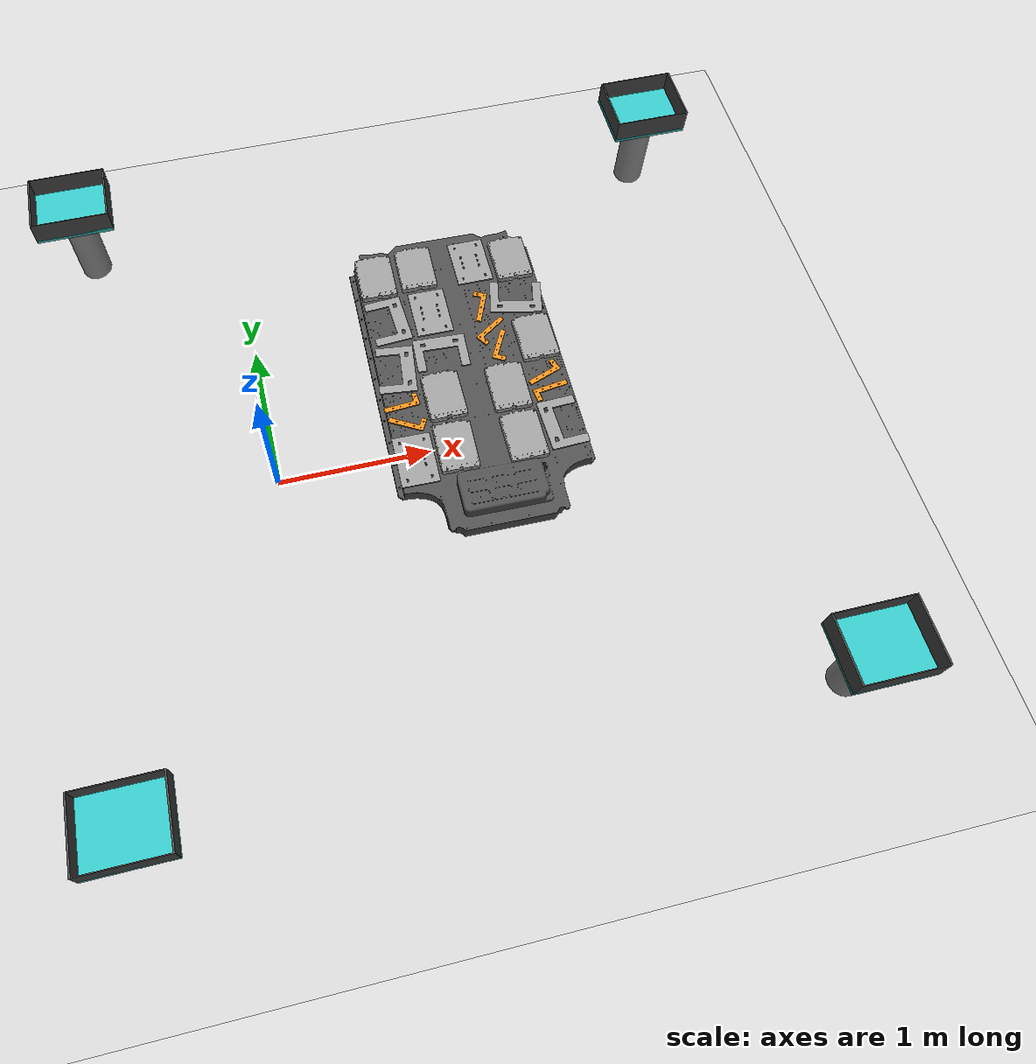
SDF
<sdf version="1.6">
 <world name="default">
  <scene><shadows>0</shadows><ambient>0.4 0.4 0.4 1</ambient><background>0.7 0.7 0.7 1</background></scene>
  <model name="ground_plane">
   <static>1</static>
   <link name="link">
    <collision name="collision">
     <geometry><plane><normal>0 0 1</normal><size>100 100</size></plane></geometry>
     <surface><friction><ode><mu>100</mu><mu2>50</mu2></ode></friction></surface>
    </collision>
    <visual name="visual">
     <cast_shadows>0</cast_shadows>
     <geometry><plane><normal>0 0 1</normal><size>100 100</size></plane></geometry>
     <material>
      <script><uri>file://media/materials/scripts/gazebo.material</uri><name>PR2/Grey3</name></script>
     </material>
    </visual>
   </link>
  </model>
  <light name="sun" type="directional">
   <pose>0 0 10 0 -0 0</pose>
   <diffuse>0.8 0.8 0.8 1</diffuse>
   <specular>0.2 0.2 0.2 1</specular>
   <attenuation>
    <range>1000</range>
    <constant>0.9</constant>
    <linear>0.01</linear>
    <quadratic>0.001</quadratic>
   </attenuation>
   <direction>-0.5 0.1 -0.9</direction>
  </light>
  <model name="tesla_battery">
   <static>1</static>
   <link name="link0">
    <collision name="collision">
     <pose>0.05 0.15 -0.05445 0 -0 0</pose>
     <geometry><box><size>1.1 1.9 0.12</size></box></geometry>
     <surface><friction><ode><mu>1</mu><mu2>1</mu2></ode></friction></surface>
    </collision>
    <visual name="visual">
     <geometry><mesh><uri>model://tesla_battery_v2/meshes/tesla_batteryv2.dae</uri></mesh></geometry>
     <material>
      <script><uri>file://media/materials/scripts/gazebo.material</uri><name>Gazebo/DarkGrey</name></script>
     </material>
    </visual>
   </link>
   <pose>1.26097 -0.02038 0.8 0 -0 0</pose>
  </model>
  <model name="tesla_battery_support">
   <static>1</static>
   <link name="link0">
    <collision name="collision"><geometry><box><size>0.7 2.8 0.5</size></box></geometry></collision>
   </link>
   <pose>1.3 0 0.25 0 -0 0</pose>
  </model>
  <model name="bin_1">
   <static>1</static>
   <link name="column_link">
    <collision name="column">
     <pose>0 0 0.3 0 -0 0</pose>
     <geometry><box><size>0.4 0.5 0.6</size></box></geometry>
     <surface><friction><ode><mu>0.6</mu><mu2>0.6</mu2></ode></friction></surface>
    </collision>
    <visual name="column">
     <pose>0 0 0.3 0 -0 0</pose>
     <geometry><cylinder><radius>0.1</radius><length>0.6</length></cylinder></geometry>
     <material>
      <script><uri>file://media/materials/scripts/gazebo.material</uri><name>PR2/Grey4</name></script>
     </material>
    </visual>
   </link>
   <joint name="column2table" type="revolute">
    <parent>column_link</parent>
    <child>table_link</child>
    <pose>0 0 0.3 0 -0 0</pose>
   </joint>
   <link name="table_link">
    <collision name="surface">
     <pose>0 0 0.6 0 -0 0</pose>
     <geometry><box><size>0.5 0.4 0.03</size></box></geometry>
     <surface><friction><ode><mu>0.6</mu><mu2>0.6</mu2></ode></friction></surface>
    </collision>
    <visual name="surface">
     <pose>0 0 0.6 0 -0 0</pose>
     <geometry><box><size>0.5 0.4 0.03</size></box></geometry>
     <material>
      <script><uri>file://media/materials/scripts/gazebo.material</uri><name>Gazebo/Turquoise</name></script>
     </material>
    </visual>
   </link>
   <joint name="table2bin" type="prismatic">
    <parent>table_link</parent>
    <child>bin_link</child>
    <pose>0 0 1 0 -0 0</pose>
    <axis>
     <xyz>0 0 1</xyz>
     <use_parent_model_frame>0</use_parent_model_frame>
     <limit><lower>-1e+16</lower><upper>1e+16</upper></limit>
     <dynamics><spring_reference>0</spring_reference><spring_stiffness>0</spring_stiffness></dynamics>
    </axis>
   </joint>
   <link name="bin_link">
    <collision name="bin">
     <pose>0 0 0.68 0 -0 0</pose>
     <geometry><mesh><uri>model://table_bin/meshes/big_bin.stl</uri></mesh></geometry>
    </collision>
    <visual name="bin">
     <pose>0 0 0.68 0 -0 0</pose>
     <geometry><mesh><uri>model://table_bin/meshes/big_bin.dae</uri></mesh></geometry>
     <material>
      <script><uri>file://media/materials/scripts/gazebo.material</uri><name>Gazebo/DarkGrey</name></script>
     </material>
    </visual>
   </link>
   <pose>-1 2 0 0 -0 0</pose>
  </model>
  <model name="bin_2">
   <static>1</static>
   <link name="column_link">
    <collision name="column">
     <pose>0 0 0.3 0 -0 0</pose>
     <geometry><box><size>0.4 0.5 0.6</size></box></geometry>
     <surface><friction><ode><mu>0.6</mu><mu2>0.6</mu2></ode></friction></surface>
    </collision>
    <visual name="column">
     <pose>0 0 0.3 0 -0 0</pose>
     <geometry><cylinder><radius>0.1</radius><length>0.6</length></cylinder></geometry>
     <material>
      <script><uri>file://media/materials/scripts/gazebo.material</uri><name>PR2/Grey4</name></script>
     </material>
    </visual>
   </link>
   <joint name="column2table" type="revolute">
    <parent>column_link</parent>
    <child>table_link</child>
    <pose>0 0 0.3 0 -0 0</pose>
   </joint>
   <link name="table_link">
    <collision name="surface">
     <pose>0 0 0.6 0 -0 0</pose>
     <geometry><box><size>0.5 0.4 0.03</size></box></geometry>
     <surface><friction><ode><mu>0.6</mu><mu2>0.6</mu2></ode></friction></surface>
    </collision>
    <visual name="surface">
     <pose>0 0 0.6 0 -0 0</pose>
     <geometry><box><size>0.5 0.4 0.03</size></box></geometry>
     <material>
      <script><uri>file://media/materials/scripts/gazebo.material</uri><name>Gazebo/Turquoise</name></script>
     </material>
    </visual>
   </link>
   <joint name="table2bin" type="prismatic">
    <parent>table_link</parent>
    <child>bin_link</child>
    <pose>0 0 1 0 -0 0</pose>
    <axis>
     <xyz>0 0 1</xyz>
     <use_parent_model_frame>0</use_parent_model_frame>
     <limit><lower>-1e+16</lower><upper>1e+16</upper></limit>
     <dynamics><spring_reference>0</spring_reference><spring_stiffness>0</spring_stiffness></dynamics>
    </axis>
   </joint>
   <link name="bin_link">
    <collision name="bin">
     <pose>0 0 0.68 0 -0 0</pose>
     <geometry><mesh><uri>model://table_bin/meshes/big_bin.stl</uri></mesh></geometry>
    </collision>
    <visual name="bin">
     <pose>0 0 0.68 0 -0 0</pose>
     <geometry><mesh><uri>model://table_bin/meshes/big_bin.dae</uri></mesh></geometry>
     <material>
      <script><uri>file://media/materials/scripts/gazebo.material</uri><name>Gazebo/DarkGrey</name></script>
     </material>
    </visual>
   </link>
   <pose>-1 -2 0 0 -0 0</pose>
  </model>
  <model name="bin_3">
   <static>1</static>
   <link name="column_link">
    <collision name="column">
     <pose>0 0 0.3 0 -0 0</pose>
     <geometry><box><size>0.4 0.5 0.6</size></box></geometry>
     <surface><friction><ode><mu>0.6</mu><mu2>0.6</mu2></ode></friction></surface>
    </collision>
    <visual name="column">
     <pose>0 0 0.3 0 -0 0</pose>
     <geometry><cylinder><radius>0.1</radius><length>0.6</length></cylinder></geometry>
     <material>
      <script><uri>file://media/materials/scripts/gazebo.material</uri><name>PR2/Grey4</name></script>
     </material>
    </visual>
   </link>
   <joint name="column2table" type="revolute">
    <parent>column_link</parent>
    <child>table_link</child>
    <pose>0 0 0.3 0 -0 0</pose>
   </joint>
   <link name="table_link">
    <collision name="surface">
     <pose>0 0 0.6 0 -0 0</pose>
     <geometry><box><size>0.5 0.4 0.03</size></box></geometry>
     <surface><friction><ode><mu>0.6</mu><mu2>0.6</mu2></ode></friction></surface>
    </collision>
    <visual name="surface">
     <pose>0 0 0.6 0 -0 0</pose>
     <geometry><box><size>0.5 0.4 0.03</size></box></geometry>
     <material>
      <script><uri>file://media/materials/scripts/gazebo.material</uri><name>Gazebo/Turquoise</name></script>
     </material>
    </visual>
   </link>
   <joint name="table2bin" type="prismatic">
    <parent>table_link</parent>
    <child>bin_link</child>
    <pose>0 0 1 0 -0 0</pose>
    <axis>
     <xyz>0 0 1</xyz>
     <use_parent_model_frame>0</use_parent_model_frame>
     <limit><lower>-1e+16</lower><upper>1e+16</upper></limit>
     <dynamics><spring_reference>0</spring_reference><spring_stiffness>0</spring_stiffness></dynamics>
    </axis>
   </joint>
   <link name="bin_link">
    <collision name="bin">
     <pose>0 0 0.68 0 -0 0</pose>
     <geometry><mesh><uri>model://table_bin/meshes/big_bin.stl</uri></mesh></geometry>
    </collision>
    <visual name="bin">
     <pose>0 0 0.68 0 -0 0</pose>
     <geometry><mesh><uri>model://table_bin/meshes/big_bin.dae</uri></mesh></geometry>
     <material>
      <script><uri>file://media/materials/scripts/gazebo.material</uri><name>Gazebo/DarkGrey</name></script>
     </material>
    </visual>
   </link>
   <pose>3 -2 0 0 -0 0</pose>
  </model>
  <model name="bin_4">
   <static>1</static>
   <link name="column_link">
    <collision name="column">
     <pose>0 0 0.3 0 -0 0</pose>
     <geometry><box><size>0.4 0.5 0.6</size></box></geometry>
     <surface><friction><ode><mu>0.6</mu><mu2>0.6</mu2></ode></friction></surface>
    </collision>
    <visual name="column">
     <pose>0 0 0.3 0 -0 0</pose>
     <geometry><cylinder><radius>0.1</radius><length>0.6</length></cylinder></geometry>
     <material>
      <script><uri>file://media/materials/scripts/gazebo.material</uri><name>PR2/Grey4</name></script>
     </material>
    </visual>
   </link>
   <joint name="column2table" type="revolute">
    <parent>column_link</parent>
    <child>table_link</child>
    <pose>0 0 0.3 0 -0 0</pose>
   </joint>
   <link name="table_link">
    <collision name="surface">
     <pose>0 0 0.6 0 -0 0</pose>
     <geometry><box><size>0.5 0.4 0.03</size></box></geometry>
     <surface><friction><ode><mu>0.6</mu><mu2>0.6</mu2></ode></friction></surface>
    </collision>
    <visual name="surface">
     <pose>0 0 0.6 0 -0 0</pose>
     <geometry><box><size>0.5 0.4 0.03</size></box></geometry>
     <material>
      <script><uri>file://media/materials/scripts/gazebo.material</uri><name>Gazebo/Turquoise</name></script>
     </material>
    </visual>
   </link>
   <joint name="table2bin" type="prismatic">
    <parent>table_link</parent>
    <child>bin_link</child>
    <pose>0 0 1 0 -0 0</pose>
    <axis>
     <xyz>0 0 1</xyz>
     <use_parent_model_frame>0</use_parent_model_frame>
     <limit><lower>-1e+16</lower><upper>1e+16</upper></limit>
     <dynamics><spring_reference>0</spring_reference><spring_stiffness>0</spring_stiffness></dynamics>
    </axis>
   </joint>
   <link name="bin_link">
    <collision name="bin">
     <pose>0 0 0.68 0 -0 0</pose>
     <geometry><mesh><uri>model://table_bin/meshes/big_bin.stl</uri></mesh></geometry>
    </collision>
    <visual name="bin">
     <pose>0 0 0.68 0 -0 0</pose>
     <geometry><mesh><uri>model://table_bin/meshes/big_bin.dae</uri></mesh></geometry>
     <material>
      <script><uri>file://media/materials/scripts/gazebo.material</uri><name>Gazebo/DarkGrey</name></script>
     </material>
    </visual>
   </link>
   <pose>3 2 0 0 -0 0</pose>
  </model>
  <model name="leaf6">
   <static>0</static>
   <link name="leaf_cell_link">
    <collision name="collision">
     <geometry><box><size>0.2228 0.3149 0.035</size></box></geometry>
     <surface><friction><ode><mu>1</mu><mu2>1</mu2></ode></friction></surface>
    </collision>
    <visual name="visual">
     <geometry><mesh><uri>model://leaf_cell/meshes/leaf_cell.dae</uri></mesh></geometry>
     <material>
      <script><uri>file://media/materials/scripts/gazebo.material</uri><name>Gazebo/Grey</name></script>
     </material>
    </visual>
    <inertial>
     <pose>0 0 0 0 0 -1.5707</pose>
     <mass>0.1</mass>
     <inertia>
      <ixx>0.000539835</ixx>
      <iyy>0.00075853</iyy>
      <izz>0.0012813</izz>
      <ixy>0</ixy>
      <ixz>0</ixz>
      <iyz>0</iyz>
     </inertia>
    </inertial>
   </link>
   <pose>1.05959 -0.075193 0.82305 0 0 -0.00291</pose>
  </model>
  <model name="leaf66">
   <static>0</static>
   <link name="leaf_cell_link">
    <collision name="collision">
     <geometry><box><size>0.2228 0.3149 0.035</size></box></geometry>
     <surface><friction><ode><mu>1</mu><mu2>1</mu2></ode></friction></surface>
    </collision>
    <visual name="visual">
     <geometry><mesh><uri>model://leaf_cell/meshes/leaf_cell.dae</uri></mesh></geometry>
     <material>
      <script><uri>file://media/materials/scripts/gazebo.material</uri><name>Gazebo/Grey</name></script>
     </material>
    </visual>
    <inertial>
     <pose>0 0 0 0 0 -1.5707</pose>
     <mass>0.1</mass>
     <inertia>
      <ixx>0.000539835</ixx>
      <iyy>0.00075853</iyy>
      <izz>0.0012813</izz>
      <ixy>0</ixy>
      <ixz>0</ixz>
      <iyz>0</iyz>
     </inertia>
    </inertial>
   </link>
   <pose>1.09812 0.855126 0.823044 0 -5.4e-05 -0.028102</pose>
  </model>
  <model name="leaf5">
   <static>0</static>
   <link name="leaf_cell_link">
    <collision name="collision">
     <geometry><box><size>0.2228 0.3149 0.035</size></box></geometry>
     <surface><friction><ode><mu>1</mu><mu2>1</mu2></ode></friction></surface>
    </collision>
    <visual name="visual">
     <geometry><mesh><uri>model://leaf_cell/meshes/leaf_cell.dae</uri></mesh></geometry>
     <material>
      <script><uri>file://media/materials/scripts/gazebo.material</uri><name>Gazebo/Grey</name></script>
     </material>
    </visual>
    <inertial>
     <pose>0 0 0 0 0 -1.5707</pose>
     <mass>0.1</mass>
     <inertia>
      <ixx>0.000539835</ixx>
      <iyy>0.00075853</iyy>
      <izz>0.0012813</izz>
      <ixy>0</ixy>
      <ixz>0</ixz>
      <iyz>0</iyz>
     </inertia>
    </inertial>
   </link>
   <pose>1.68929 0.200985 0.82305 0 0 -0.001846</pose>
  </model>
  <model name="leaf55">
   <static>0</static>
   <link name="leaf_cell_link">
    <collision name="collision">
     <geometry><box><size>0.2228 0.3149 0.035</size></box></geometry>
     <surface><friction><ode><mu>1</mu><mu2>1</mu2></ode></friction></surface>
    </collision>
    <visual name="visual">
     <geometry><mesh><uri>model://leaf_cell/meshes/leaf_cell.dae</uri></mesh></geometry>
     <material>
      <script><uri>file://media/materials/scripts/gazebo.material</uri><name>Gazebo/Grey</name></script>
     </material>
    </visual>
    <inertial>
     <pose>0 0 0 0 0 -1.5707</pose>
     <mass>0.1</mass>
     <inertia>
      <ixx>0.000539835</ixx>
      <iyy>0.00075853</iyy>
      <izz>0.0012813</izz>
      <ixy>0</ixy>
      <ixz>0</ixz>
      <iyz>0</iyz>
     </inertia>
    </inertial>
   </link>
   <pose>1.43959 -0.099034 0.82305 0 0 -0.022437</pose>
  </model>
  <model name="leaf4">
   <static>0</static>
   <link name="leaf_cell_link">
    <collision name="collision">
     <geometry><box><size>0.2228 0.3149 0.035</size></box></geometry>
     <surface><friction><ode><mu>1</mu><mu2>1</mu2></ode></friction></surface>
    </collision>
    <visual name="visual">
     <geometry><mesh><uri>model://leaf_cell/meshes/leaf_cell.dae</uri></mesh></geometry>
     <material>
      <script><uri>file://media/materials/scripts/gazebo.material</uri><name>Gazebo/Grey</name></script>
     </material>
    </visual>
    <inertial>
     <pose>0 0 0 0 0 -1.5707</pose>
     <mass>0.1</mass>
     <inertia>
      <ixx>0.000539835</ixx>
      <iyy>0.00075853</iyy>
      <izz>0.0012813</izz>
      <ixy>0</ixy>
      <ixz>0</ixz>
      <iyz>0</iyz>
     </inertia>
    </inertial>
   </link>
   <pose>1.69367 0.803934 0.82305 0 0 -0.009591</pose>
  </model>
  <model name="leaf44">
   <static>0</static>
   <link name="leaf_cell_link">
    <collision name="collision">
     <geometry><box><size>0.2228 0.3149 0.035</size></box></geometry>
     <surface><friction><ode><mu>1</mu><mu2>1</mu2></ode></friction></surface>
    </collision>
    <visual name="visual">
     <geometry><mesh><uri>model://leaf_cell/meshes/leaf_cell.dae</uri></mesh></geometry>
     <material>
      <script><uri>file://media/materials/scripts/gazebo.material</uri><name>Gazebo/Grey</name></script>
     </material>
    </visual>
    <inertial>
     <pose>0 0 0 0 0 -1.5707</pose>
     <mass>0.1</mass>
     <inertia>
      <ixx>0.000539835</ixx>
      <iyy>0.00075853</iyy>
      <izz>0.0012813</izz>
      <ixy>0</ixy>
      <ixz>0</ixz>
      <iyz>0</iyz>
     </inertia>
    </inertial>
   </link>
   <pose>1.44275 -0.43523 0.823045 -3.2e-05 -0 0.003706</pose>
  </model>
  <model name="leaf1">
   <static>0</static>
   <link name="leaf_cell_link">
    <collision name="collision">
     <geometry><box><size>0.2228 0.3149 0.035</size></box></geometry>
     <surface><friction><ode><mu>1</mu><mu2>1</mu2></ode></friction></surface>
    </collision>
    <visual name="visual">
     <geometry><mesh><uri>model://leaf_cell/meshes/leaf_cell.dae</uri></mesh></geometry>
     <material>
      <script><uri>file://media/materials/scripts/gazebo.material</uri><name>Gazebo/Grey</name></script>
     </material>
    </visual>
    <inertial>
     <pose>0 0 0 0 0 -1.5707</pose>
     <mass>0.1</mass>
     <inertia>
      <ixx>0.000539835</ixx>
      <iyy>0.00075853</iyy>
      <izz>0.0012813</izz>
      <ixy>0</ixy>
      <ixz>0</ixz>
      <iyz>0</iyz>
     </inertia>
    </inertial>
   </link>
   <pose>0.843939 0.842418 0.823046 -1e-06 4.4e-05 -0.025657</pose>
  </model>
  <model name="plate_a_1">
   <static>0</static>
   <link name="link0">
    <collision name="collision">
     <geometry><mesh><uri>model://plate_a/meshes/plate_a_centroid.stl</uri></mesh></geometry>
     <surface><friction><ode><mu>0.99</mu><mu2>0.99</mu2></ode></friction></surface>
    </collision>
    <visual name="visual">
     <geometry><mesh><uri>model://plate_a/meshes/plate_a_centroid.dae</uri></mesh></geometry>
     <material>
      <script><uri>file://media/materials/scripts/gazebo.material</uri><name>PR2/Grey1</name></script>
     </material>
    </visual>
    <inertial>
     <mass>0.1</mass>
     <inertia>
      <ixx>0.00082718</ixx>
      <ixy>0</ixy>
      <ixz>0</ixz>
      <iyy>0.00043403</iyy>
      <iyz>0</iyz>
      <izz>0.00125955</izz>
     </inertia>
    </inertial>
   </link>
   <pose>0.906177 0.514501 0.81055 0 -0 0.063779</pose>
  </model>
  <model name="leaf2">
   <static>0</static>
   <link name="leaf_cell_link">
    <collision name="collision">
     <geometry><box><size>0.2228 0.3149 0.035</size></box></geometry>
     <surface><friction><ode><mu>1</mu><mu2>1</mu2></ode></friction></surface>
    </collision>
    <visual name="visual">
     <geometry><mesh><uri>model://leaf_cell/meshes/leaf_cell.dae</uri></mesh></geometry>
     <material>
      <script><uri>file://media/materials/scripts/gazebo.material</uri><name>Gazebo/Grey</name></script>
     </material>
    </visual>
    <inertial>
     <pose>0 0 0 0 0 -1.5707</pose>
     <mass>0.1</mass>
     <inertia>
      <ixx>0.000539835</ixx>
      <iyy>0.00075853</iyy>
      <izz>0.0012813</izz>
      <ixy>0</ixy>
      <ixz>0</ixz>
      <iyz>0</iyz>
     </inertia>
    </inertial>
   </link>
   <pose>1.04888 -0.416288 0.823044 0 5.4e-05 -0.033728</pose>
  </model>
  <model name="plate_a_2">
   <static>0</static>
   <link name="link0">
    <collision name="collision">
     <geometry><mesh><uri>model://plate_a/meshes/plate_a_centroid.stl</uri></mesh></geometry>
     <surface><friction><ode><mu>0.99</mu><mu2>0.99</mu2></ode></friction></surface>
    </collision>
    <visual name="visual">
     <geometry><mesh><uri>model://plate_a/meshes/plate_a_centroid.dae</uri></mesh></geometry>
     <material>
      <script><uri>file://media/materials/scripts/gazebo.material</uri><name>PR2/Grey1</name></script>
     </material>
    </visual>
    <inertial>
     <mass>0.1</mass>
     <inertia>
      <ixx>0.00082718</ixx>
      <ixy>0</ixy>
      <ixz>0</ixz>
      <iyy>0.00043403</iyy>
      <iyz>0</iyz>
      <izz>0.00125955</izz>
     </inertia>
    </inertial>
   </link>
   <pose>1.64255 0.460036 0.810545 5.3e-05 -6e-06 -1.78379</pose>
  </model>
  <gravity>0 0 -9.8</gravity>
  <magnetic_field>6e-06 2.3e-05 -4.2e-05</magnetic_field>
  <atmosphere type="adiabatic"/>
  <physics name="default_physics" default="0" type="ode">
   <max_step_size>0.001</max_step_size>
   <real_time_factor>1</real_time_factor>
   <real_time_update_rate>1000</real_time_update_rate>
  </physics>
  <spherical_coordinates>
   <surface_model>EARTH_WGS84</surface_model>
   <latitude_deg>0</latitude_deg>
   <longitude_deg>0</longitude_deg>
   <elevation>0</elevation>
   <heading_deg>0</heading_deg>
  </spherical_coordinates>
  <model name="plate_a_1_clone">
   <static>0</static>
   <link name="link0">
    <collision name="collision">
     <geometry><mesh><uri>model://plate_a/meshes/plate_a_centroid.stl</uri></mesh></geometry>
     <surface><friction><ode><mu>0.99</mu><mu2>0.99</mu2></ode></friction></surface>
    </collision>
    <visual name="visual">
     <geometry><mesh><uri>model://plate_a/meshes/plate_a_centroid.dae</uri></mesh></geometry>
     <material>
      <script><uri>file://media/materials/scripts/gazebo.material</uri><name>PR2/Grey1</name></script>
     </material>
    </visual>
    <inertial>
     <mass>0.1</mass>
     <inertia>
      <ixx>0.00082718</ixx>
      <ixy>0</ixy>
      <ixz>0</ixz>
      <iyy>0.00043403</iyy>
      <iyz>0</iyz>
      <izz>0.00125955</izz>
     </inertia>
    </inertial>
   </link>
   <pose>1.6332 -0.401631 0.810545 -5.5e-05 -2.1e-05 -3.10496</pose>
  </model>
  <model name="plate_a_1_clone_clone">
   <static>0</static>
   <link name="link0">
    <collision name="collision">
     <geometry><mesh><uri>model://plate_a/meshes/plate_a_centroid.stl</uri></mesh></geometry>
     <surface><friction><ode><mu>0.99</mu><mu2>0.99</mu2></ode></friction></surface>
    </collision>
    <visual name="visual">
     <geometry><mesh><uri>model://plate_a/meshes/plate_a_centroid.dae</uri></mesh></geometry>
     <material>
      <script><uri>file://media/materials/scripts/gazebo.material</uri><name>PR2/Grey1</name></script>
     </material>
    </visual>
    <inertial>
     <mass>0.1</mass>
     <inertia>
      <ixx>0.00082718</ixx>
      <ixy>0</ixy>
      <ixz>0</ixz>
      <iyy>0.00043403</iyy>
      <iyz>0</iyz>
      <izz>0.00125955</izz>
     </inertia>
    </inertial>
   </link>
   <pose>0.880711 0.156406 0.810545 6e-05 -1e-05 -0.113484</pose>
  </model>
  <model name="plate_a_2_clone">
   <static>0</static>
   <link name="link0">
    <collision name="collision">
     <geometry><mesh><uri>model://plate_a/meshes/plate_a_centroid.stl</uri></mesh></geometry>
     <surface><friction><ode><mu>0.99</mu><mu2>0.99</mu2></ode></friction></surface>
    </collision>
    <visual name="visual">
     <geometry><mesh><uri>model://plate_a/meshes/plate_a_centroid.dae</uri></mesh></geometry>
     <material>
      <script><uri>file://media/materials/scripts/gazebo.material</uri><name>PR2/Grey1</name></script>
     </material>
    </visual>
    <inertial>
     <mass>0.1</mass>
     <inertia>
      <ixx>0.00082718</ixx>
      <ixy>0</ixy>
      <ixz>0</ixz>
      <iyy>0.00043403</iyy>
      <iyz>0</iyz>
      <izz>0.00125955</izz>
     </inertia>
    </inertial>
   </link>
   <pose>1.11666 0.271775 0.810545 -5.5e-05 -2.1e-05 1.52154</pose>
  </model>
  <audio><device>default</device></audio>
  <model name="plate_b_0">
   <static>0</static>
   <link name="link0">
    <collision name="collision">
     <geometry><mesh><uri>model://plate_b/meshes/plate_b.stl</uri></mesh></geometry>
     <surface><friction><ode><mu>0.99</mu><mu2>0.99</mu2></ode></friction></surface>
    </collision>
    <visual name="visual">
     <geometry><mesh><uri>model://plate_b/meshes/plate_b.dae</uri></mesh></geometry>
     <material>
      <script><uri>file://media/materials/scripts/gazebo.material</uri><name>Gazebo/Grey</name></script>
     </material>
    </visual>
    <inertial>
     <mass>0.1</mass>
     <inertia>
      <ixx>0.0003858</ixx>
      <ixy>0</ixy>
      <ixz>0</ixz>
      <iyy>0.0003858</iyy>
      <iyz>0</iyz>
      <izz>0.000605</izz>
     </inertia>
    </inertial>
   </link>
   <pose>0.809576 -0.447597 0.810548 2.3e-05 -2.1e-05 -0.020509</pose>
  </model>
  <model name="plate_b_0_clone">
   <static>0</static>
   <link name="link0">
    <collision name="collision">
     <geometry><mesh><uri>model://plate_b/meshes/plate_b.stl</uri></mesh></geometry>
     <surface><friction><ode><mu>0.99</mu><mu2>0.99</mu2></ode></friction></surface>
    </collision>
    <visual name="visual">
     <geometry><mesh><uri>model://plate_b/meshes/plate_b.dae</uri></mesh></geometry>
     <material>
      <script><uri>file://media/materials/scripts/gazebo.material</uri><name>Gazebo/Grey</name></script>
     </material>
    </visual>
    <inertial>
     <mass>0.1</mass>
     <inertia>
      <ixx>0.0003858</ixx>
      <ixy>0</ixy>
      <ixz>0</ixz>
      <iyy>0.0003858</iyy>
      <iyz>0</iyz>
      <izz>0.000605</izz>
     </inertia>
    </inertial>
   </link>
   <pose>1.44538 0.838307 0.81055 0 0 -0.002563</pose>
  </model>
  <model name="plate_b_0_clone_clone">
   <static>0</static>
   <link name="link0">
    <collision name="collision">
     <geometry><mesh><uri>model://plate_b/meshes/plate_b.stl</uri></mesh></geometry>
     <surface><friction><ode><mu>0.99</mu><mu2>0.99</mu2></ode></friction></surface>
    </collision>
    <visual name="visual">
     <geometry><mesh><uri>model://plate_b/meshes/plate_b.dae</uri></mesh></geometry>
     <material>
      <script><uri>file://media/materials/scripts/gazebo.material</uri><name>Gazebo/Grey</name></script>
     </material>
    </visual>
    <inertial>
     <mass>0.1</mass>
     <inertia>
      <ixx>0.0003858</ixx>
      <ixy>0</ixy>
      <ixz>0</ixz>
      <iyy>0.0003858</iyy>
      <iyz>0</iyz>
      <izz>0.000605</izz>
     </inertia>
    </inertial>
   </link>
   <pose>1.11745 0.518641 0.81055 1e-06 1e-06 -0.012547</pose>
  </model>
  <model name="bracket">
   <static>0</static>
   <link name="link0">
    <collision name="collision">
     <geometry><box><size>0.18 0.07 0.01</size></box></geometry>
     <surface><friction><ode><mu>0.9</mu><mu2>0.9</mu2></ode></friction></surface>
    </collision>
    <visual name="visual">
     <geometry><mesh><uri>model://bracket/meshes/bracket_modified.dae</uri></mesh></geometry>
     <material>
      <script><uri>file://media/materials/scripts/gazebo.material</uri><name>Gazebo/Orange</name></script>
     </material>
    </visual>
    <inertial>
     <mass>0.1</mass>
     <inertia>
      <ixx>4.17e-05</ixx>
      <ixy>0</ixy>
      <ixz>0</ixz>
      <iyy>0.0002708</iyy>
      <iyz>0</iyz>
      <izz>0.0003108</izz>
     </inertia>
    </inertial>
   </link>
   <pose>1.66749 -0.071377 0.810538 -0.000335 0 -2.79887</pose>
  </model>
  <model name="bracket_clone">
   <static>0</static>
   <link name="link0">
    <collision name="collision">
     <geometry><box><size>0.18 0.07 0.01</size></box></geometry>
     <surface><friction><ode><mu>0.9</mu><mu2>0.9</mu2></ode></friction></surface>
    </collision>
    <visual name="visual">
     <geometry><mesh><uri>model://bracket/meshes/bracket_modified.dae</uri></mesh></geometry>
     <material>
      <script><uri>file://media/materials/scripts/gazebo.material</uri><name>Gazebo/Orange</name></script>
     </material>
    </visual>
    <inertial>
     <mass>0.1</mass>
     <inertia>
      <ixx>4.17e-05</ixx>
      <ixy>0</ixy>
      <ixz>0</ixz>
      <iyy>0.0002708</iyy>
      <iyz>0</iyz>
      <izz>0.0003108</izz>
     </inertia>
    </inertial>
   </link>
   <pose>1.46758 0.205369 0.810538 0.000335 -0 1.0689</pose>
  </model>
  <model name="bracket_clone_clone">
   <static>0</static>
   <link name="link0">
    <collision name="collision">
     <geometry><box><size>0.18 0.07 0.01</size></box></geometry>
     <surface><friction><ode><mu>0.9</mu><mu2>0.9</mu2></ode></friction></surface>
    </collision>
    <visual name="visual">
     <geometry><mesh><uri>model://bracket/meshes/bracket_modified.dae</uri></mesh></geometry>
     <material>
      <script><uri>file://media/materials/scripts/gazebo.material</uri><name>Gazebo/Orange</name></script>
     </material>
    </visual>
    <inertial>
     <mass>0.1</mass>
     <inertia>
      <ixx>4.17e-05</ixx>
      <ixy>0</ixy>
      <ixz>0</ixz>
      <iyy>0.0002708</iyy>
      <iyz>0</iyz>
      <izz>0.0003108</izz>
     </inertia>
    </inertial>
   </link>
   <pose>1.68581 -0.157925 0.810538 0.000335 -0 0.130254</pose>
  </model>
  <model name="bracket_clone_clone_0">
   <static>0</static>
   <link name="link0">
    <collision name="collision">
     <geometry><box><size>0.18 0.07 0.01</size></box></geometry>
     <surface><friction><ode><mu>0.9</mu><mu2>0.9</mu2></ode></friction></surface>
    </collision>
    <visual name="visual">
     <geometry><mesh><uri>model://bracket/meshes/bracket_modified.dae</uri></mesh></geometry>
     <material>
      <script><uri>file://media/materials/scripts/gazebo.material</uri><name>Gazebo/Orange</name></script>
     </material>
    </visual>
    <inertial>
     <mass>0.1</mass>
     <inertia>
      <ixx>4.17e-05</ixx>
      <ixy>0</ixy>
      <ixz>0</ixz>
      <iyy>0.0002708</iyy>
      <iyz>0</iyz>
      <izz>0.0003108</izz>
     </inertia>
    </inertial>
   </link>
   <pose>1.44727 0.323726 0.81055 0 -0 0.577472</pose>
  </model>
  <model name="bracket_clone_clone_0_clone">
   <static>0</static>
   <link name="link0">
    <collision name="collision">
     <geometry><box><size>0.18 0.07 0.01</size></box></geometry>
     <surface><friction><ode><mu>0.9</mu><mu2>0.9</mu2></ode></friction></surface>
    </collision>
    <visual name="visual">
     <geometry><mesh><uri>model://bracket/meshes/bracket_modified.dae</uri></mesh></geometry>
     <material>
      <script><uri>file://media/materials/scripts/gazebo.material</uri><name>Gazebo/Orange</name></script>
     </material>
    </visual>
    <inertial>
     <mass>0.1</mass>
     <inertia>
      <ixx>4.17e-05</ixx>
      <ixy>0</ixy>
      <ixz>0</ixz>
      <iyy>0.0002708</iyy>
      <iyz>0</iyz>
      <izz>0.0003108</izz>
     </inertia>
    </inertial>
   </link>
   <pose>1.42811 0.480859 0.810538 -0.000335 -0 -1.98389</pose>
  </model>
  <model name="bracket_clone_clone_1">
   <static>0</static>
   <link name="link0">
    <collision name="collision">
     <geometry><box><size>0.18 0.07 0.01</size></box></geometry>
     <surface><friction><ode><mu>0.9</mu><mu2>0.9</mu2></ode></friction></surface>
    </collision>
    <visual name="visual">
     <geometry><mesh><uri>model://bracket/meshes/bracket_modified.dae</uri></mesh></geometry>
     <material>
      <script><uri>file://media/materials/scripts/gazebo.material</uri><name>Gazebo/Orange</name></script>
     </material>
    </visual>
    <inertial>
     <mass>0.1</mass>
     <inertia>
      <ixx>4.17e-05</ixx>
      <ixy>0</ixy>
      <ixz>0</ixz>
      <iyy>0.0002708</iyy>
      <iyz>0</iyz>
      <izz>0.0003108</izz>
     </inertia>
    </inertial>
   </link>
   <pose>0.802969 -0.208749 0.810538 0.000335 -0 2.6374</pose>
  </model>
  <model name="bracket_clone_clone_1_clone">
   <static>0</static>
   <link name="link0">
    <collision name="collision">
     <geometry><box><size>0.18 0.07 0.01</size></box></geometry>
     <surface><friction><ode><mu>0.9</mu><mu2>0.9</mu2></ode></friction></surface>
    </collision>
    <visual name="visual">
     <geometry><mesh><uri>model://bracket/meshes/bracket_modified.dae</uri></mesh></geometry>
     <material>
      <script><uri>file://media/materials/scripts/gazebo.material</uri><name>Gazebo/Orange</name></script>
     </material>
    </visual>
    <inertial>
     <mass>0.1</mass>
     <inertia>
      <ixx>4.17e-05</ixx>
      <ixy>0</ixy>
      <ixz>0</ixz>
      <iyy>0.0002708</iyy>
      <iyz>0</iyz>
      <izz>0.0003108</izz>
     </inertia>
    </inertial>
   </link>
   <pose>0.802667 -0.091059 0.810538 0.000335 -0 -3.0755</pose>
  </model>
 </world>
</sdf>
